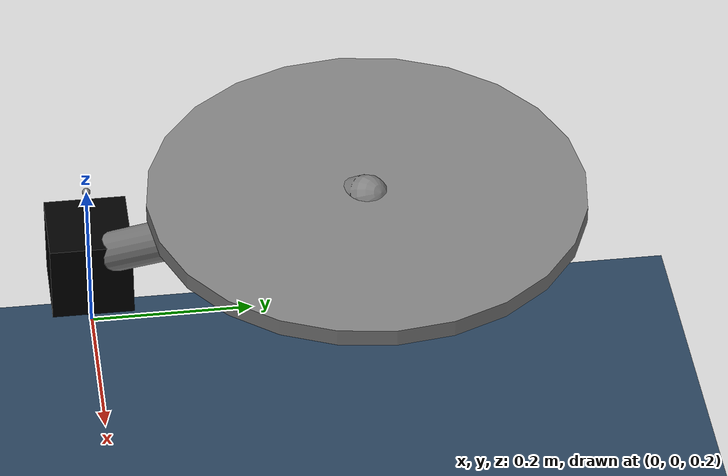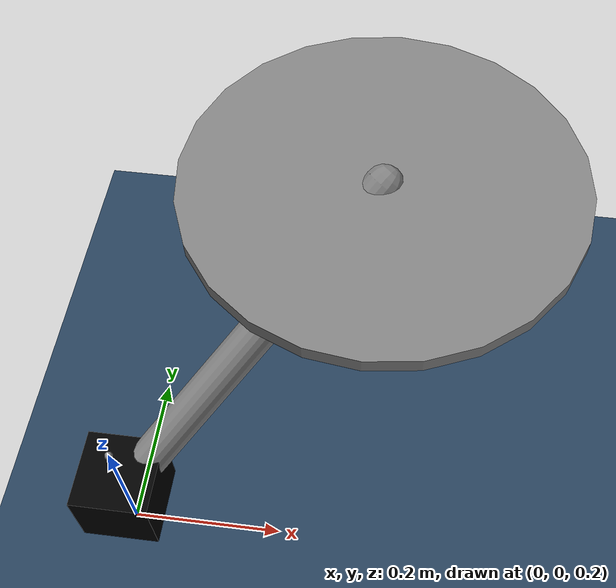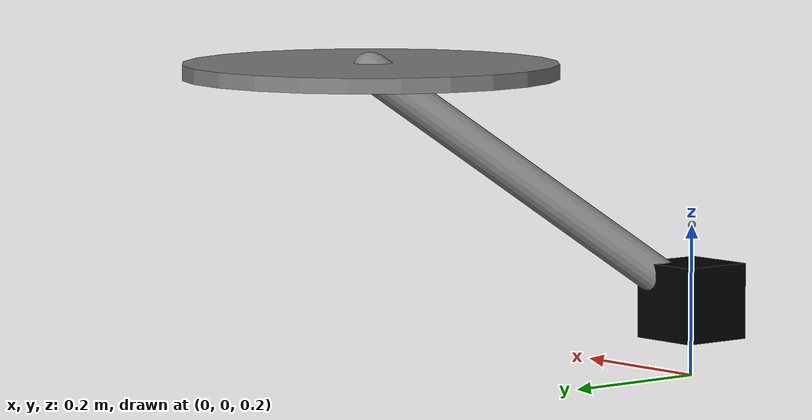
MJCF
<mujoco model="carosh">
    <compiler angle="radian" />
    <option timestep="0.001" >
    </option>
    <asset>
        <texture name="grid" type="2d" builtin="checker" width="512" height="512" rgb1=".1 .2 .3" rgb2=".2 .3 .4" />
        <material name="grid" texture="grid" texrepeat="1 1" texuniform="true" reflectance="0" />
        <material name="skyblue" rgba="0.64 0.835 0.97 1" />
        <material name="gray" rgba="0.63 0.61 0.615 1" />
        <material name="pink" rgba="0.89 0.61 0.61 1" />
        <material name="blue" rgba="0.18 0.33 0.92 1" />
        <material name="green" rgba="0.7 0.84 0.725 0.8" />
        <material name="purple" rgba="0.83 0.78 0.93 0.8" />
        <material name="orange" rgba="0.95 0.65 0.31 1" />
        <material name="black" rgba="0 0 0 1" />
        <material name="white" rgba="1 1 1 1" />
    </asset>
    <contact>
        <exclude body1="robot" body2="arm1" />
    </contact>
    <worldbody>
        <light name="sun" pos="-20 0 10" dir="1 0 -0.1" diffuse="1 1 1" specular="0.5 0.5 0.5" />
        <geom name="ground" type="plane" pos="0 0 0" size="30 30 0.01" material="grid" />
        <!-- 30 degrees: 0.9659258  0.258819    0 0 -->
        <!-- 45 degrees: 0.9238795  0.3826834   0 0 -->
        <!-- 60 degrees: 0.8660254  0.5         0 0 -->
        <!-- 90 degrees: 0.7071068  0.7071068   0 0 -->
        <body name="robot" pos="0 0 .3" quat="1 0 0 0">
            <freejoint name="base_freejoint" />
            <inertial pos="0 0 0" quat="1 0 0 0" mass="1.0" diaginertia="0.1 0.1 0.1"/>
            <geom type="box" size="0.05 0.05 0.05" material="black" />
            <body name="arm1" pos="0 0 0" quat="1 0 0 0">
                <inertial pos="0 0 0" mass="0.1" />
                <geom type="capsule" fromto="0 0 0 0.3 0.3 0.3" size="0.025"/>
                <site name="rotor1_site" pos="0 0 0.1" />
                <body name="rotor1" pos="0.3 0.3 0.3" quat="1 0 0 0">
                    <inertial pos="0 0 0" mass="0.005" />
                    <geom type="cylinder" size="0.25 0.01"/>
                </body>
            </body>
        </body>
    </worldbody>
    <actuator>
        <!-- rotor velocity controller -->
        <motor name="rotor1" site="rotor1_site" ctrllimited="true" ctrlrange="0 10" gear="0 0 1 0 0 .1" />
    </actuator>
    <sensor>
    </sensor>
</mujoco>
